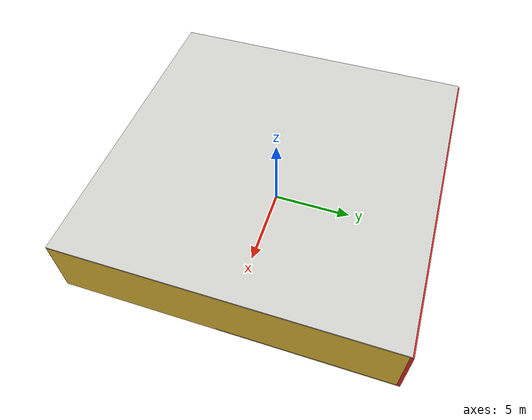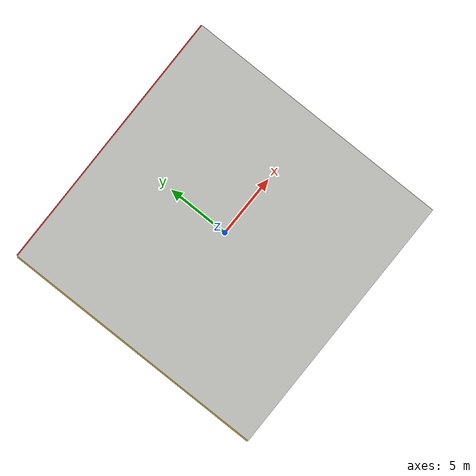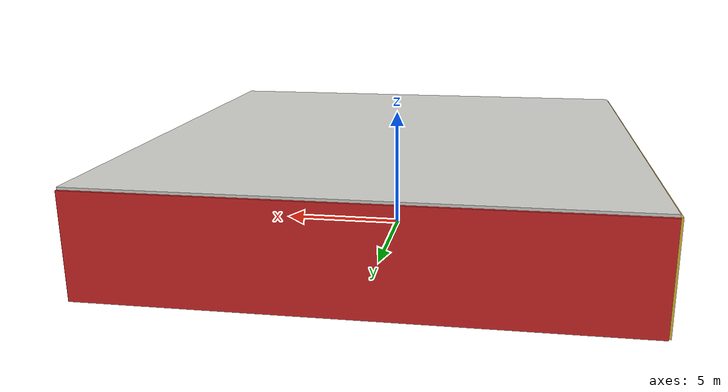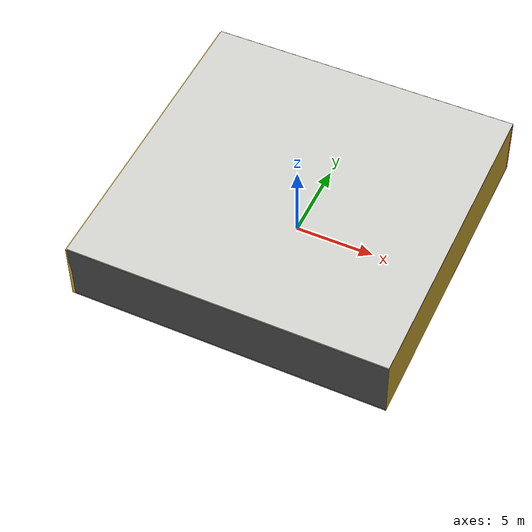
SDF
<sdf version="1.4">
 <world name="default">
  <physics type="ode">
   <max_step_size>0.001</max_step_size>
   <real_time_factor>1</real_time_factor>
   <real_time_update_rate>1000</real_time_update_rate>
   <gravity>0 0 -9.8</gravity>
  </physics>
  <scene><ambient>0.4 0.4 0.4 1</ambient><background>0.7 0.7 0.7 1</background><shadows>1</shadows></scene>
  <model name="Surrounding">
   <static>1</static>
   <link name="Ceiling">
    <collision name="Ceiling_Collision"><geometry><box><size>20 20 0.1</size></box></geometry></collision>
    <visual name="Ceiling_Visual">
     <geometry><box><size>20 20 0.1</size></box></geometry>
     <material>
      <script><uri>file://media/materials/scripts/gazebo.material</uri><name>Gazebo/CeilingTiled</name></script>
     </material>
    </visual>
    <pose>0 0 4.05 0 0 0</pose>
   </link>
   <link name="Wall_South">
    <collision name="Wall_South_Collision">
     <geometry><box><size>20 0 4</size></box></geometry>
     <pose>0 0 2 0 -0 0</pose>
    </collision>
    <visual name="Wall_South_Visual">
     <pose>0 0 2 0 -0 0</pose>
     <geometry><box><size>20 0 4</size></box></geometry>
     <material>
      <script><uri>file://media/materials/scripts/gazebo.material</uri><name>Gazebo/Road</name></script>
     </material>
    </visual>
    <velocity_decay><linear>0</linear><angular>0</angular></velocity_decay>
    <pose>0 -10 0 0 -0 0</pose>
   </link>
   <link name="Wall_East">
    <collision name="Wall_21_Collision">
     <geometry><box><size>20 0 4</size></box></geometry>
     <pose>0 0 2 0 -0 0</pose>
    </collision>
    <visual name="Wall_21_Visual">
     <pose>0 0 2 0 -0 0</pose>
     <geometry><box><size>20 0 4</size></box></geometry>
     <material>
      <script><uri>file://media/materials/scripts/gazebo.material</uri><name>Gazebo/Gold</name></script>
     </material>
    </visual>
    <velocity_decay><linear>0</linear><angular>0</angular></velocity_decay>
    <pose>10 0 0 0 -0 1.5708</pose>
   </link>
   <link name="Wall_North">
    <collision name="Wall_22_Collision">
     <geometry><box><size>20 0.2 4</size></box></geometry>
     <pose>0 0 2 0 -0 0</pose>
    </collision>
    <visual name="Wall_22_Visual">
     <pose>0 0 2 0 -0 0</pose>
     <geometry><box><size>20 0.2 4</size></box></geometry>
     <material>
      <script><uri>file://media/materials/scripts/gazebo.material</uri><name>Gazebo/RedBright</name></script>
     </material>
    </visual>
    <velocity_decay><linear>0</linear><angular>0</angular></velocity_decay>
    <pose>0 10 0 0 -0 0</pose>
   </link>
   <link name="Wall_West">
    <collision name="Wall_23_Collision">
     <geometry><box><size>20 0.2 4</size></box></geometry>
     <pose>0 0 2 0 -0 0</pose>
    </collision>
    <visual name="Wall_23_Visual">
     <pose>0 0 2 0 -0 0</pose>
     <geometry><box><size>20 0.2 4</size></box></geometry>
     <material>
      <script><uri>file://media/materials/scripts/gazebo.material</uri><name>Gazebo/Gold</name></script>
     </material>
    </visual>
    <velocity_decay><linear>0</linear><angular>0</angular></velocity_decay>
    <pose>-10 0 0 0 0 -1.5708</pose>
   </link>
   <link name="Ground_link">
    <collision name="collision">
     <pose>0 0 .05 0 -0 0</pose>
     <geometry><box><size>20 20 0.1</size></box></geometry>
    </collision>
    <visual name="visual">
     <pose>0 0 .05 0 -0 0</pose>
     <geometry><box><size>20 20 0.1</size></box></geometry>
     <material>
      <script><uri>file://media/materials/scripts/gazebo.material</uri><name>Gazebo/GreyTransparent</name></script>
     </material>
    </visual>
   </link>
   <static>1</static>
  </model>
  <spherical_coordinates>
   <surface_model>EARTH_WGS84</surface_model>
   <latitude_deg>0</latitude_deg>
   <longitude_deg>0</longitude_deg>
   <elevation>0</elevation>
   <heading_deg>0</heading_deg>
  </spherical_coordinates>
  <light name="lightball_0" type="diffuse">
   <diffuse>0.8 0.8 0.8 1</diffuse>
   <specular>0.2 0.2 0.2 1</specular>
   <attenuation>
    <range>100</range>
    <constant>0.7</constant>
    <linear>0.01</linear>
    <quadratic>0.001</quadratic>
   </attenuation>
   <direction>-0.5 0.1 -0.9</direction>
   <pose>0.395240583607 9.53958290295 3.37718191865 0 0 0</pose>
  </light>
  <light name="lightball_1" type="diffuse">
   <diffuse>0.8 0.8 0.8 1</diffuse>
   <specular>0.2 0.2 0.2 1</specular>
   <attenuation>
    <range>100</range>
    <constant>0.7</constant>
    <linear>0.01</linear>
    <quadratic>0.001</quadratic>
   </attenuation>
   <direction>-0.5 0.1 -0.9</direction>
   <pose>7.06940722122 -1.43377544427 3.3671133245 0 0 0</pose>
  </light>
  <light name="lightball_2" type="diffuse">
   <diffuse>0.8 0.8 0.8 1</diffuse>
   <specular>0.2 0.2 0.2 1</specular>
   <attenuation>
    <range>100</range>
    <constant>0.7</constant>
    <linear>0.01</linear>
    <quadratic>0.001</quadratic>
   </attenuation>
   <direction>-0.5 0.1 -0.9</direction>
   <pose>-1.80869440535 4.89641299482 3.72817787507 0 0 0</pose>
  </light>
  <light name="lightball_3" type="diffuse">
   <diffuse>0.8 0.8 0.8 1</diffuse>
   <specular>0.2 0.2 0.2 1</specular>
   <attenuation>
    <range>100</range>
    <constant>0.7</constant>
    <linear>0.01</linear>
    <quadratic>0.001</quadratic>
   </attenuation>
   <direction>-0.5 0.1 -0.9</direction>
   <pose>0.559825272132 5.22422447951 0.772791609328 0 0 0</pose>
  </light>
  <light name="lightball_4" type="diffuse">
   <diffuse>0.8 0.8 0.8 1</diffuse>
   <specular>0.2 0.2 0.2 1</specular>
   <attenuation>
    <range>100</range>
    <constant>0.7</constant>
    <linear>0.01</linear>
    <quadratic>0.001</quadratic>
   </attenuation>
   <direction>-0.5 0.1 -0.9</direction>
   <pose>7.65003110325 -7.57622315462 3.55353921632 0 0 0</pose>
  </light>
  <light name="lightball_5" type="diffuse">
   <diffuse>0.8 0.8 0.8 1</diffuse>
   <specular>0.2 0.2 0.2 1</specular>
   <attenuation>
    <range>100</range>
    <constant>0.7</constant>
    <linear>0.01</linear>
    <quadratic>0.001</quadratic>
   </attenuation>
   <direction>-0.5 0.1 -0.9</direction>
   <pose>7.09578899361 6.32130627116 3.65030398138 0 0 0</pose>
  </light>
  <light name="lightball_6" type="diffuse">
   <diffuse>0.8 0.8 0.8 1</diffuse>
   <specular>0.2 0.2 0.2 1</specular>
   <attenuation>
    <range>100</range>
    <constant>0.7</constant>
    <linear>0.01</linear>
    <quadratic>0.001</quadratic>
   </attenuation>
   <direction>-0.5 0.1 -0.9</direction>
   <pose>4.00787878471 -6.51674247027 1.62992511554 0 0 0</pose>
  </light>
  <light name="lightball_7" type="diffuse">
   <diffuse>0.8 0.8 0.8 1</diffuse>
   <specular>0.2 0.2 0.2 1</specular>
   <attenuation>
    <range>100</range>
    <constant>0.7</constant>
    <linear>0.01</linear>
    <quadratic>0.001</quadratic>
   </attenuation>
   <direction>-0.5 0.1 -0.9</direction>
   <pose>-0.877368675922 -2.6626705983 3.24943630212 0 0 0</pose>
  </light>
  <light name="lightball_8" type="diffuse">
   <diffuse>0.8 0.8 0.8 1</diffuse>
   <specular>0.2 0.2 0.2 1</specular>
   <attenuation>
    <range>100</range>
    <constant>0.7</constant>
    <linear>0.01</linear>
    <quadratic>0.001</quadratic>
   </attenuation>
   <direction>-0.5 0.1 -0.9</direction>
   <pose>-7.13189044595 9.41381123854 0.613173784534 0 0 0</pose>
  </light>
  <light name="lightball_9" type="diffuse">
   <diffuse>0.8 0.8 0.8 1</diffuse>
   <specular>0.2 0.2 0.2 1</specular>
   <attenuation>
    <range>100</range>
    <constant>0.7</constant>
    <linear>0.01</linear>
    <quadratic>0.001</quadratic>
   </attenuation>
   <direction>-0.5 0.1 -0.9</direction>
   <pose>0.0872522566051 5.07024308864 2.84039828702 0 0 0</pose>
  </light>
  <light name="lightball_10" type="diffuse">
   <diffuse>0.8 0.8 0.8 1</diffuse>
   <specular>0.2 0.2 0.2 1</specular>
   <attenuation>
    <range>100</range>
    <constant>0.7</constant>
    <linear>0.01</linear>
    <quadratic>0.001</quadratic>
   </attenuation>
   <direction>-0.5 0.1 -0.9</direction>
   <pose>3.19660473485 2.32983027271 2.12626430683 0 0 0</pose>
  </light>
  <include><uri>model://cabinet</uri><pose>1.23319171478 7.264843951 0 0 0 1.33200153917</pose></include>
  <include>
   <uri>model://textured_shapes</uri>
   <pose>5.14481761376 4.56471959889 0 0 0 1.6848989017</pose>
  </include>
  <include><uri>model://cabinet</uri><pose>7.37787307776 7.78913546743 0 0 0 2.19438614742</pose></include>
 </world>
</sdf>

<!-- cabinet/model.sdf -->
<sdf version="1.5">
  <model name="cabinet">
    <static>true</static>
    <link name="cabinet_bottom_plate">
      <inertial>
        <pose>0 0 -1 0 0 0</pose>
        <inertia>
          <ixx>2.050000</ixx>
          <ixy>0</ixy>
          <ixz>0</ixz>
          <iyy>2.050000</iyy>
          <iyz>0</iyz>
          <izz>2.050000</izz>
        </inertia>
        <mass>25.000000</mass>
      </inertial>
      <collision name="cabinet_bottom_plate_geom">
        <pose>0 0 0.010000 0 0 0</pose>
        <geometry>
          <box>
            <size>0.450000 0.450000 0.020000</size>
          </box>
        </geometry>
      </collision>
      <visual name="cabinet_bottom_plate_geom_visual">
        <pose>0 0 0.010000 0 0 0</pose>
        <geometry>
          <box>
            <size>0.450000 0.450000 0.020000</size>
          </box>
        </geometry>
        <material>
          <script>
            <uri>model://media/materials/scripts/gazebo.material</uri>
            <name>Gazebo/Wood</name>
          </script>
        </material>
      </visual>
      <collision name="cabinet_bottom_plate_geom_cabinet_back_plate">
        <pose>0.235000 0 0.510000 0 0 0</pose>
        <geometry>
          <box>
            <size>0.020000 0.450000 1.020000</size>
          </box>
        </geometry>
      </collision>
      <visual name="cabinet_bottom_plate_geom_cabinet_back_plate_visual">
        <pose>0.235000 0 0.510000 0 0 0</pose>
        <geometry>
          <box>
            <size>0.020000 0.450000 1.020000</size>
          </box>
        </geometry>
        <material>
          <script>
            <uri>model://media/materials/scripts/gazebo.material</uri>
            <name>Gazebo/Wood</name>
          </script>
        </material>
      </visual>
      <collision name="cabinet_bottom_plate_geom_cabinet_left_plate">
        <pose>0 0.235000 0.510000 0 0 0</pose>
        <geometry>
          <box>
            <size>0.450000 0.020000 1.020000</size>
          </box>
        </geometry>
      </collision>
      <visual name="cabinet_bottom_plate_geom_cabinet_left_plate_visual">
        <pose>0 0.235000 0.510000 0 0 0</pose>
        <geometry>
          <box>
            <size>0.450000 0.020000 1.020000</size>
          </box>
        </geometry>
        <material>
          <script>
            <uri>model://media/materials/scripts/gazebo.material</uri>
            <name>Gazebo/Wood</name>
          </script>
        </material>
      </visual>
      <collision name="cabinet_bottom_plate_geom_cabinet_middle_plate">
        <pose>0 0 0.510000 0 0 0</pose>
        <geometry>
          <box>
            <size>0.450000 0.450000 0.020000</size>
          </box>
        </geometry>
      </collision>
      <visual name="cabinet_bottom_plate_geom_cabinet_middle_plate_visual">
        <pose>0 0 0.510000 0 0 0</pose>
        <geometry>
          <box>
            <size>0.450000 0.450000 0.020000</size>
          </box>
        </geometry>
        <material>
          <script>
            <uri>model://media/materials/scripts/gazebo.material</uri>
            <name>Gazebo/Wood</name>
          </script>
        </material>
      </visual>
      <collision name="cabinet_bottom_plate_geom_cabinet_right_plate">
        <pose>0 -0.235000 0.510000 0 0 0</pose>
        <geometry>
          <box>
            <size>0.450000 0.020000 1.020000</size>
          </box>
        </geometry>
      </collision>
      <visual name="cabinet_bottom_plate_geom_cabinet_right_plate_visual">
        <pose>0 -0.235000 0.510000 0 0 0</pose>
        <geometry>
          <box>
            <size>0.450000 0.020000 1.020000</size>
          </box>
        </geometry>
        <material>
          <script>
            <uri>model://media/materials/scripts/gazebo.material</uri>
            <name>Gazebo/Wood</name>
          </script>
        </material>
      </visual>
      <collision name="cabinet_bottom_plate_geom_cabinet_top_plate">
        <pose>0 0 1.010000 0 0 0</pose>
        <geometry>
          <box>
            <size>0.450000 0.450000 0.020000</size>
          </box>
        </geometry>
      </collision>
      <visual name="cabinet_bottom_plate_geom_cabinet_top_plate_visual">
        <pose>0 0 1.010000 0 0 0</pose>
        <geometry>
          <box>
            <size>0.450000 0.450000 0.020000</size>
          </box>
        </geometry>
        <material>
          <script>
            <uri>model://media/materials/scripts/gazebo.material</uri>
            <name>Gazebo/Wood</name>
          </script>
        </material>
      </visual>
    </link>
  </model>
</sdf>

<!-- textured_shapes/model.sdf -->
<sdf version="1.6">
  <model name="textured_shapes">
    <pose>0 0 0.5 0 0 0</pose>
    <link name="box">
      <pose>0 -1.5 0 0 0 0</pose>
      <collision name="collision">
        <geometry>
          <box>
            <size>1 1 1</size>
          </box>
        </geometry>
      </collision>
      <visual name="visual">
        <geometry>
          <box>
            <size>1 1 1</size>
          </box>
        </geometry>
        <material>
          <script>
            <uri>model://../model_source/models/textured_shapes/materials/scripts</uri>
            <uri>model://../model_source/models/textured_shapes/materials/textures</uri>
            <name>TexturedShape/Squares</name>
          </script>
        </material>
      </visual>
    </link>
    <link name="sphere">
      <collision name="collision">
        <geometry>
          <sphere>
            <radius>0.5</radius>
          </sphere>
        </geometry>
      </collision>
      <visual name="visual">
        <geometry>
          <sphere>
            <radius>0.5</radius>
          </sphere>
        </geometry>
        <material>
          <script>
            <uri>model://../model_source/models/textured_shapes/materials/scripts</uri>
            <uri>model://../model_source/models/textured_shapes/materials/textures</uri>
            <name>TexturedShape/Squares</name>
          </script>
        </material>
      </visual>
    </link>
    <link name="cylinder">
      <pose>0 1.5 0 0 0 0</pose>
      <collision name="collision">
        <geometry>
          <cylinder>
            <radius>0.5</radius>
            <length>1</length>
          </cylinder>
        </geometry>
      </collision>
      <visual name="visual">
        <geometry>
          <cylinder>
            <radius>0.5</radius>
            <length>1</length>
          </cylinder>
        </geometry>
        <material>
          <script>
            <uri>model://../model_source/models/textured_shapes/materials/scripts</uri>
            <uri>model://../model_source/models/textured_shapes/materials/textures</uri>
            <name>TexturedShape/Squares</name>
          </script>
        </material>
      </visual>
    </link>
  </model>
</sdf>
